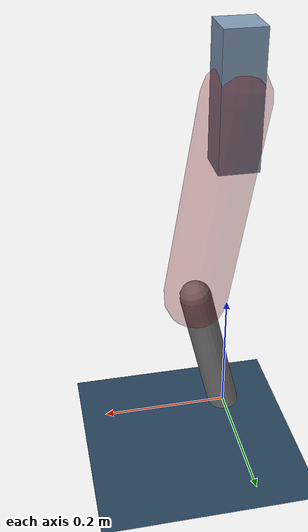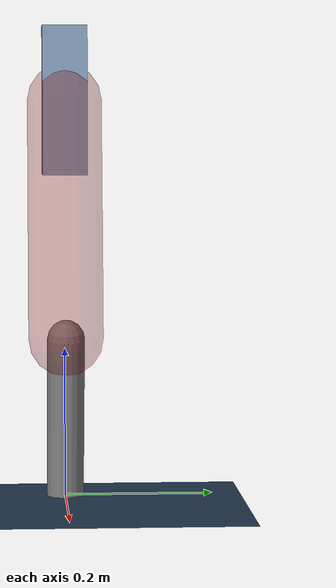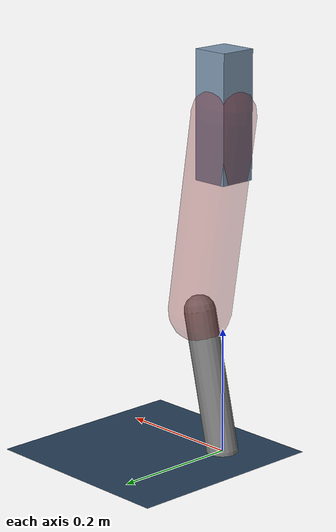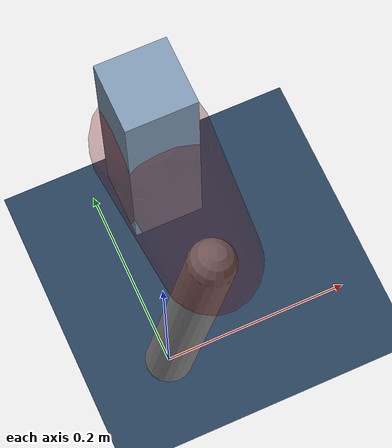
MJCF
<mujoco model="Hopper2D">
	<compiler inertiafromgeom="true" angle="radian" />
	<option timestep="0.001" integrator="implicit" cone="elliptic" solver="Newton" tolerance="1e-10" />

	<default>
		<geom contype="1" conaffinity="1" condim="3" friction="2 0.005 0.0001" solref="0.005 1" />
		<joint limited="true" damping="0.1" />
	</default>

	<asset>
		<texture name="skybox" type="skybox" builtin="gradient" rgb1=".4 .6 .8" rgb2="0 0 0" width="800" height="800" />
		<texture name="grid" type="2d" builtin="checker" rgb1=".1 .2 .3" rgb2=".2 .3 .4" width="300" height="300" mark="edge" markrgb=".2 .3 .4" />
		<material name="ground" texture="grid" texrepeat="1 1" texuniform="true" reflectance="0.1" />
		<material name="leg" rgba="0.5 0.6 0.7 1" />
	</asset>

	<worldbody>

		<geom name="floor" type="plane" size="5 5 0.25" material="ground" />

		<light directional="false" diffuse="0.8 0.8 0.8" specular="0.3 0.3 0.3" pos="0 0 2" dir="0 0 -1" />
		<light mode="targetbodycom" target="base" directional="false" diffuse="0.8 0.8 0.8" specular="0.3 0.3 0.3" pos="0 0 2" dir="0 0 -1" />

		<camera name="fixed" pos="0 -2 1" xyaxes="1 0 0 0 0 1" />
		<camera name="tracking" mode="trackcom" pos="0 -3 1" />

		<body name="root" pos="0 0 0.5362684095592687">
			<joint name="slide_x" type="slide" axis="1 0 0" range="-100 100" />
			<joint name="slide_z" type="slide" axis="0 0 1" range="0 10" />

			<body name="base" pos="0 0 0">
				<geom name="torso" type="box" size="0.03 0.03 0.1" mass="3.0700000000000003" material="leg" />

				<body name="link1" pos="0 0 0" euler="0 1.4109705142183144 0">
					<joint type="hinge" axis="0 -1 0" pos="0 0 0" name="hinge1" limited="true" range="-3.14 3.14" stiffness="0" damping="0.1" />
					<geom name="thigh" type="capsule" fromto="0 0 0 0.3215189065424544 0 0" size="0.05" rgba="0.5 0 0 0.3" mass="1.047401047664627" />

					<body name="link2" pos="0.3215189065424544 0 0" euler="0 0.38950909809681344 0">
						<joint type="hinge" axis="0 -1 0" pos="0 0 0" name="hinge2" limited="true" range="-3.14 3.14" stiffness="0" damping="0.1" />
						<geom name="shank" type="capsule" fromto="0 0 0 0.2247495030168143 0 0" size="0.025" mass="0.4215996024134514" />

					</body>
				</body>
			</body>
		</body>
	</worldbody>

	<actuator>
		<motor name="torque1" joint="hinge1" ctrlrange="-110.10550799161447 110.10550799161447" ctrllimited="true" gear="1" />
		<motor name="torque2" joint="hinge2" ctrlrange="-98.14959898744611 98.14959898744611" ctrllimited="true" gear="1" />
	</actuator>
</mujoco>
